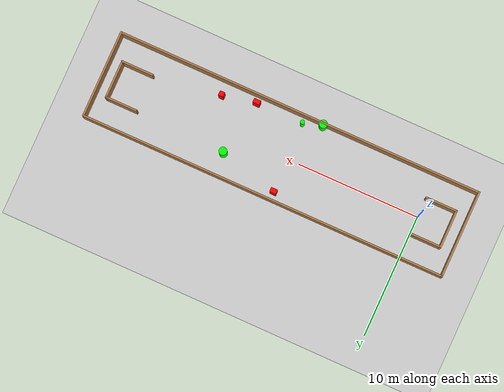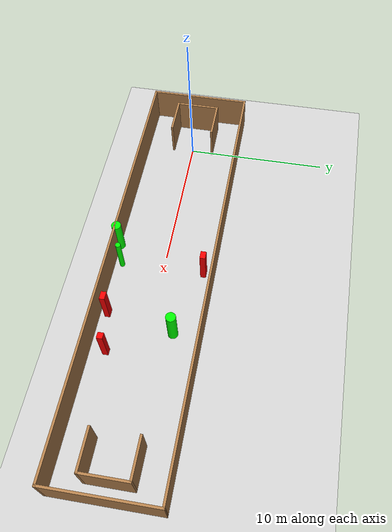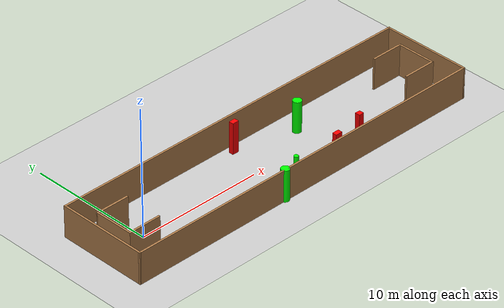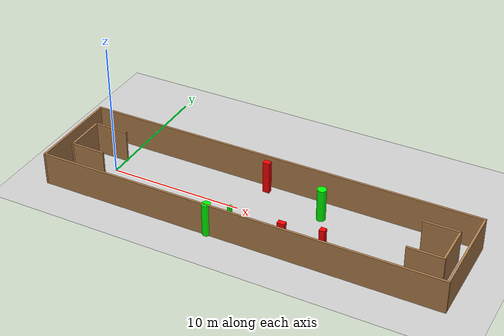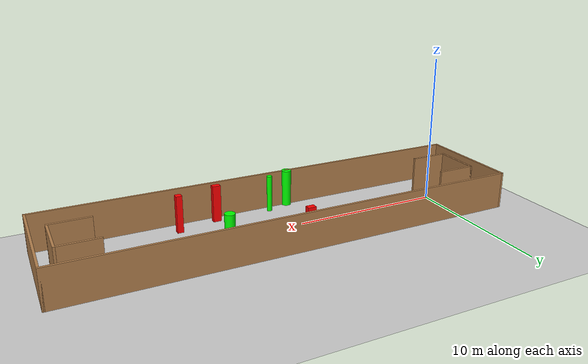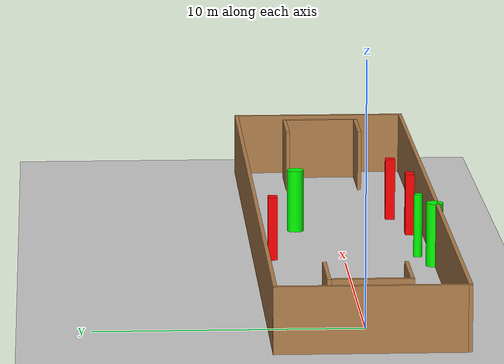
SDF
<sdf version="1.7">
 <world name="default">
  <light name="sun" type="directional">
   <pose>0 0 10 0 -0 0</pose>
   <diffuse>0.8 0.8 0.8 1</diffuse>
   <specular>0.2 0.2 0.2 1</specular>
   <attenuation>
    <range>1000</range>
    <constant>0.9</constant>
    <linear>0.01</linear>
    <quadratic>0.001</quadratic>
   </attenuation>
   <direction>-0.5 0.1 -0.9</direction>
   <spot><inner_angle>0</inner_angle><outer_angle>0</outer_angle><falloff>0</falloff></spot>
  </light>
  <model name="ground_plane">
   <static>1</static>
   <link name="link">
    <collision name="collision">
     <geometry><plane><normal>0 0 1</normal><size>100 100</size></plane></geometry>
     <surface>
      <contact><collide_bitmask>65535</collide_bitmask></contact>
      <friction><ode><mu>100</mu><mu2>50</mu2></ode></friction>
     </surface>
    </collision>
    <visual name="visual">
     <cast_shadows>0</cast_shadows>
     <geometry><plane><normal>0 0 1</normal><size>100 100</size></plane></geometry>
     <material>
      <script><uri>file://media/materials/scripts/gazebo.material</uri><name>Gazebo/Grey</name></script>
     </material>
    </visual>
   </link>
  </model>
  <gravity>0 0 -9.8</gravity>
  <magnetic_field>6e-06 2.3e-05 -4.2e-05</magnetic_field>
  <atmosphere type="adiabatic"/>
  <physics type="ode">
   <max_step_size>0.001</max_step_size>
   <real_time_factor>1</real_time_factor>
   <real_time_update_rate>1000</real_time_update_rate>
  </physics>
  <scene><ambient>0.4 0.4 0.4 1</ambient><background>0.7 0.7 0.7 1</background><shadows>1</shadows></scene>
  <spherical_coordinates>
   <surface_model>EARTH_WGS84</surface_model>
   <latitude_deg>0</latitude_deg>
   <longitude_deg>0</longitude_deg>
   <elevation>0</elevation>
   <heading_deg>0</heading_deg>
  </spherical_coordinates>
  <model name="my_base_walls">
   <link name="Wall_0">
    <collision name="Wall_0_Collision">
     <geometry><box><size>7.15 0.15 2.5</size></box></geometry>
     <pose>0 0 1.25 0 -0 0</pose>
    </collision>
    <visual name="Wall_0_Visual">
     <pose>0 0 1.25 0 -0 0</pose>
     <geometry><box><size>7.15 0.15 2.5</size></box></geometry>
     <material>
      <script><uri>file://media/materials/scripts/gazebo.material</uri><name>Gazebo/Wood</name></script>
      <ambient>1 1 1 1</ambient>
     </material>
     <meta><layer>0</layer></meta>
    </visual>
    <pose>-15 0 0 0 -0 1.5708</pose>
   </link>
   <link name="Wall_10">
    <collision name="Wall_10_Collision">
     <geometry><box><size>2.65 0.15 2.5</size></box></geometry>
     <pose>0 0 1.25 0 -0 0</pose>
    </collision>
    <visual name="Wall_10_Visual">
     <pose>0 0 1.25 0 -0 0</pose>
     <geometry><box><size>2.65 0.15 2.5</size></box></geometry>
     <material>
      <script><uri>file://media/materials/scripts/gazebo.material</uri><name>Gazebo/Wood</name></script>
      <ambient>1 1 1 1</ambient>
     </material>
     <meta><layer>0</layer></meta>
    </visual>
    <pose>-12.75 -1.5 0 0 -0 0</pose>
   </link>
   <link name="Wall_12">
    <collision name="Wall_12_Collision">
     <geometry><box><size>2.65 0.15 2.5</size></box></geometry>
     <pose>0 0 1.25 0 -0 0</pose>
    </collision>
    <visual name="Wall_12_Visual">
     <pose>0 0 1.25 0 -0 0</pose>
     <geometry><box><size>2.65 0.15 2.5</size></box></geometry>
     <material>
      <script><uri>file://media/materials/scripts/gazebo.material</uri><name>Gazebo/Wood</name></script>
      <ambient>1 1 1 1</ambient>
     </material>
     <meta><layer>0</layer></meta>
    </visual>
    <pose>-12.75 1.5 0 0 -0 0</pose>
   </link>
   <link name="Wall_14">
    <collision name="Wall_14_Collision">
     <geometry><box><size>3.15 0.15 2.5</size></box></geometry>
     <pose>0 0 1.25 0 -0 0</pose>
    </collision>
    <visual name="Wall_14_Visual">
     <pose>0 0 1.25 0 -0 0</pose>
     <geometry><box><size>3.15 0.15 2.5</size></box></geometry>
     <material>
      <script><uri>file://media/materials/scripts/gazebo.material</uri><name>Gazebo/Wood</name></script>
      <ambient>1 1 1 1</ambient>
     </material>
     <meta><layer>0</layer></meta>
    </visual>
    <pose>14 0 0 0 -0 -1.5708</pose>
   </link>
   <link name="Wall_15">
    <collision name="Wall_15_Collision">
     <geometry><box><size>2.65 0.15 2.5</size></box></geometry>
     <pose>0 0 1.25 0 -0 0</pose>
    </collision>
    <visual name="Wall_15_Visual">
     <pose>0 0 1.25 0 -0 0</pose>
     <geometry><box><size>2.65 0.15 2.5</size></box></geometry>
     <material>
      <script><uri>file://media/materials/scripts/gazebo.material</uri><name>Gazebo/Wood</name></script>
      <ambient>1 1 1 1</ambient>
     </material>
     <meta><layer>0</layer></meta>
    </visual>
    <pose>12.75 -1.5 0 0 -0 3.14159</pose>
   </link>
   <link name="Wall_17">
    <collision name="Wall_17_Collision">
     <geometry><box><size>2.65 0.15 2.5</size></box></geometry>
     <pose>0 0 1.25 0 -0 0</pose>
    </collision>
    <visual name="Wall_17_Visual">
     <pose>0 0 1.25 0 -0 0</pose>
     <geometry><box><size>2.65 0.15 2.5</size></box></geometry>
     <material>
      <script><uri>file://media/materials/scripts/gazebo.material</uri><name>Gazebo/Wood</name></script>
      <ambient>1 1 1 1</ambient>
     </material>
     <meta><layer>0</layer></meta>
    </visual>
    <pose>12.75 1.5 0 0 -0 3.14159</pose>
   </link>
   <link name="Wall_2">
    <collision name="Wall_2_Collision">
     <geometry><box><size>30.15 0.15 2.5</size></box></geometry>
     <pose>0 0 1.25 0 -0 0</pose>
    </collision>
    <visual name="Wall_2_Visual">
     <pose>0 0 1.25 0 -0 0</pose>
     <geometry><box><size>30.15 0.15 2.5</size></box></geometry>
     <material>
      <script><uri>file://media/materials/scripts/gazebo.material</uri><name>Gazebo/Wood</name></script>
      <ambient>1 1 1 1</ambient>
     </material>
     <meta><layer>0</layer></meta>
    </visual>
    <pose>-0 -3.5 0 0 -0 0</pose>
   </link>
   <link name="Wall_4">
    <collision name="Wall_4_Collision">
     <geometry><box><size>30.15 0.15 2.5</size></box></geometry>
     <pose>0 0 1.25 0 -0 0</pose>
    </collision>
    <visual name="Wall_4_Visual">
     <pose>0 0 1.25 0 -0 0</pose>
     <geometry><box><size>30.15 0.15 2.5</size></box></geometry>
     <material>
      <script><uri>file://media/materials/scripts/gazebo.material</uri><name>Gazebo/Wood</name></script>
      <ambient>1 1 1 1</ambient>
     </material>
     <meta><layer>0</layer></meta>
    </visual>
    <pose>-0 3.5 0 0 -0 0</pose>
   </link>
   <link name="Wall_6">
    <collision name="Wall_6_Collision">
     <geometry><box><size>7.15 0.15 2.5</size></box></geometry>
     <pose>0 0 1.25 0 -0 0</pose>
    </collision>
    <visual name="Wall_6_Visual">
     <pose>0 0 1.25 0 -0 0</pose>
     <geometry><box><size>7.15 0.15 2.5</size></box></geometry>
     <material>
      <script><uri>file://media/materials/scripts/gazebo.material</uri><name>Gazebo/Wood</name></script>
      <ambient>1 1 1 1</ambient>
     </material>
     <meta><layer>0</layer></meta>
    </visual>
    <pose>15 0 0 0 -0 -1.5708</pose>
   </link>
   <link name="Wall_9">
    <collision name="Wall_9_Collision">
     <geometry><box><size>3.15 0.15 2.5</size></box></geometry>
     <pose>0 0 1.25 0 -0 0</pose>
    </collision>
    <visual name="Wall_9_Visual">
     <pose>0 0 1.25 0 -0 0</pose>
     <geometry><box><size>3.15 0.15 2.5</size></box></geometry>
     <material>
      <script><uri>file://media/materials/scripts/gazebo.material</uri><name>Gazebo/Wood</name></script>
      <ambient>1 1 1 1</ambient>
     </material>
     <meta><layer>0</layer></meta>
    </visual>
    <pose>-14 0 0 0 -0 -1.5708</pose>
   </link>
   <static>1</static>
   <pose>11.5 0 0 0 -0 0</pose>
  </model>
  <model name="cylinder1">
   <static>1</static>
   <link name="link">
    <inertial>
     <mass>1</mass>
     <inertia><ixx>0.5</ixx><ixy>0</ixy><ixz>0</ixz><iyy>0.5</iyy><iyz>0</iyz><izz>1</izz></inertia>
    </inertial>
    <collision name="collision">
     <geometry><cylinder><radius>0.32816146667137236</radius><length>2.5</length></cylinder></geometry>
    </collision>
    <visual name="visual">
     <geometry><cylinder><radius>0.32816146667137236</radius><length>2.5</length></cylinder></geometry>
     <material>
      <ambient>0 1 0 1</ambient>
      <diffuse>0 1 0 1</diffuse>
      <specular>0.1 0.1 0.1 1</specular>
      <emissive>0 0 0 0</emissive>
     </material>
    </visual>
   </link>
   <pose>9.500511681819763 -3.41585416447779 1.25 0 0 0</pose>
  </model>
  <model name="cylinder2">
   <static>1</static>
   <link name="link">
    <inertial>
     <mass>1</mass>
     <inertia><ixx>0.5</ixx><ixy>0</ixy><ixz>0</ixz><iyy>0.5</iyy><iyz>0</iyz><izz>1</izz></inertia>
    </inertial>
    <collision name="collision">
     <geometry><cylinder><radius>0.17541199284406195</radius><length>2.5</length></cylinder></geometry>
    </collision>
    <visual name="visual">
     <geometry><cylinder><radius>0.17541199284406195</radius><length>2.5</length></cylinder></geometry>
     <material>
      <ambient>0 1 0 1</ambient>
      <diffuse>0 1 0 1</diffuse>
      <specular>0.1 0.1 0.1 1</specular>
      <emissive>0 0 0 0</emissive>
     </material>
    </visual>
   </link>
   <pose>11.015668911586777 -2.91055571535386 1.25 0 0 0</pose>
  </model>
  <model name="cylinder3">
   <static>1</static>
   <link name="link">
    <inertial>
     <mass>1</mass>
     <inertia><ixx>0.5</ixx><ixy>0</ixy><ixz>0</ixz><iyy>0.5</iyy><iyz>0</iyz><izz>1</izz></inertia>
    </inertial>
    <collision name="collision">
     <geometry><cylinder><radius>0.331512197390438</radius><length>2.5</length></cylinder></geometry>
    </collision>
    <visual name="visual">
     <geometry><cylinder><radius>0.331512197390438</radius><length>2.5</length></cylinder></geometry>
     <material>
      <ambient>0 1 0 1</ambient>
      <diffuse>0 1 0 1</diffuse>
      <specular>0.1 0.1 0.1 1</specular>
      <emissive>0 0 0 0</emissive>
     </material>
    </visual>
   </link>
   <pose>15.645823947071031 1.6218053717164453 1.25 0 0 0</pose>
  </model>
  <model name="box1">
   <static>1</static>
   <link name="link">
    <inertial>
     <mass>1</mass>
     <inertia><ixx>0.083</ixx><ixy>0</ixy><ixz>0</ixz><iyy>0.083</iyy><iyz>0</iyz><izz>0.083</izz></inertia>
    </inertial>
    <collision name="collision">
     <geometry><box><size>0.5234059351564646 0.3684036275554246 2.5</size></box></geometry>
    </collision>
    <visual name="visual">
     <geometry><box><size>0.5234059351564646 0.3684036275554246 2.5</size></box></geometry>
     <material>
      <ambient>1 0 0 1</ambient>
      <diffuse>1 0 0 1</diffuse>
      <specular>0.1 0.1 0.1 1</specular>
      <emissive>0 0 0 0</emissive>
     </material>
    </visual>
    <sensor name="my_contact" type="contact">
     <contact><collision>box_collision</collision><topic>__default_topic__</topic></contact>
    </sensor>
   </link>
   <pose>10.87897200368147 2.798933577735628 1.25 0 0 0</pose>
  </model>
  <model name="box2">
   <static>1</static>
   <link name="link">
    <inertial>
     <mass>1</mass>
     <inertia><ixx>0.083</ixx><ixy>0</ixy><ixz>0</ixz><iyy>0.083</iyy><iyz>0</iyz><izz>0.083</izz></inertia>
    </inertial>
    <collision name="collision">
     <geometry><box><size>0.5422225836705297 0.3480738313864369 2.5</size></box></geometry>
    </collision>
    <visual name="visual">
     <geometry><box><size>0.5422225836705297 0.3480738313864369 2.5</size></box></geometry>
     <material>
      <ambient>1 0 0 1</ambient>
      <diffuse>1 0 0 1</diffuse>
      <specular>0.1 0.1 0.1 1</specular>
      <emissive>0 0 0 0</emissive>
     </material>
    </visual>
    <sensor name="my_contact" type="contact">
     <contact><collision>box_collision</collision><topic>__default_topic__</topic></contact>
    </sensor>
   </link>
   <pose>14.852011055383242 -2.9059872311796573 1.25 0 0 0</pose>
  </model>
  <model name="box3">
   <static>1</static>
   <link name="link">
    <inertial>
     <mass>1</mass>
     <inertia><ixx>0.083</ixx><ixy>0</ixy><ixz>0</ixz><iyy>0.083</iyy><iyz>0</iyz><izz>0.083</izz></inertia>
    </inertial>
    <collision name="collision">
     <geometry><box><size>0.405614833863422 0.38350006566241507 2.5</size></box></geometry>
    </collision>
    <visual name="visual">
     <geometry><box><size>0.405614833863422 0.38350006566241507 2.5</size></box></geometry>
     <material>
      <ambient>1 0 0 1</ambient>
      <diffuse>1 0 0 1</diffuse>
      <specular>0.1 0.1 0.1 1</specular>
      <emissive>0 0 0 0</emissive>
     </material>
    </visual>
    <sensor name="my_contact" type="contact">
     <contact><collision>box_collision</collision><topic>__default_topic__</topic></contact>
    </sensor>
   </link>
   <pose>17.547814117327555 -2.342807173719329 1.25 0 0 0</pose>
  </model>
 </world>
</sdf>
